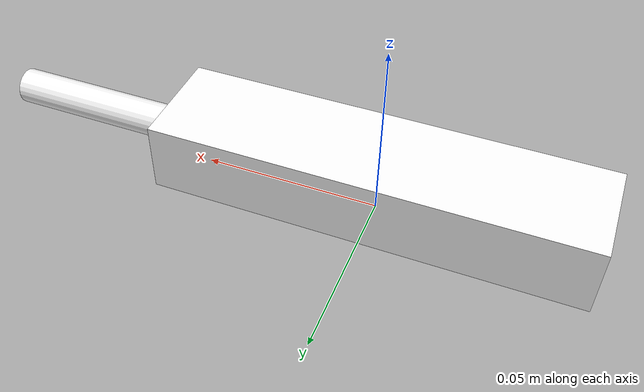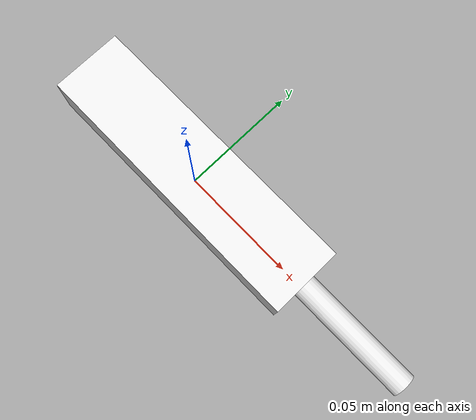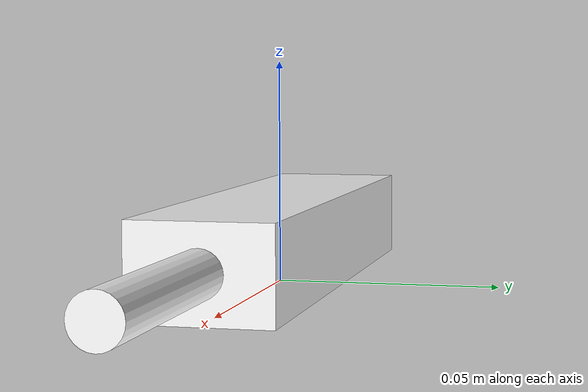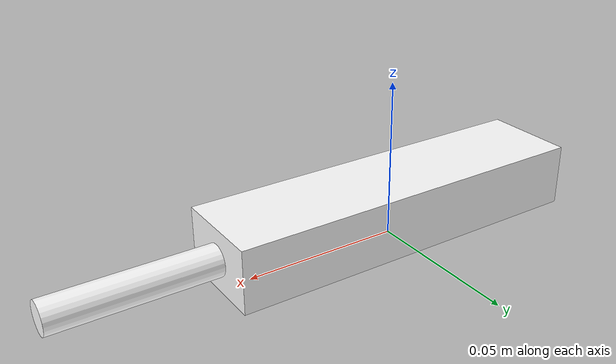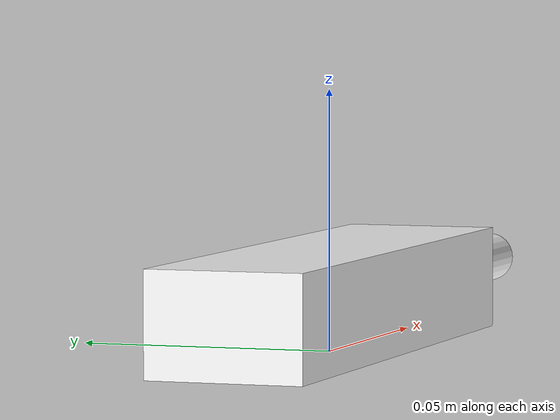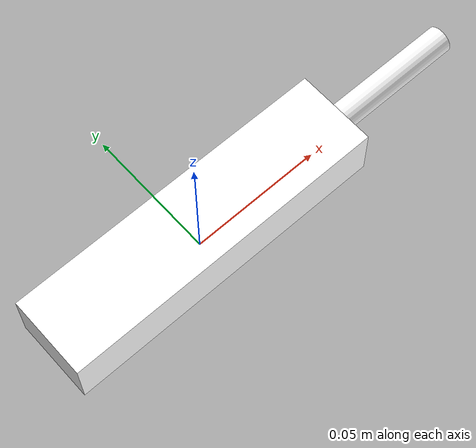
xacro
<?xml version="1.0"?>
<robot name="charger_model"
	xmlns:xacro="http://ros.org/wiki/xacro">

	<xacro:property name="M_PI" value="3.1415926" />
	<xacro:property name="H_PI" value="1.5707963" />

    <link name="base_link">
        <visual>
                <geometry>
                    <box size="1e-6 1e-6 1e-6"/>
                </geometry>
            <origin xyz="0 0 0" rpy="0 0 0"/>
            <material name="white">
                <color rgba="1 1 1 1"/>
            </material>
        </visual>
        <collision>
            <geometry>
                    <box size="1e-6 1e-6 1e-6"/>
            </geometry>
        </collision>
        <inertial>
            <mass value="0.01"/>
            <inertia ixx="1.0" ixy="0.0" ixz="0.0" iyy="1.0" iyz="0.0" izz="1.0"/>
        </inertial>
    </link>

    <link name="charger_A_link">
        <visual>
                <geometry>
                    <box size="0.12 0.03 0.02"/>
                </geometry>
            <origin xyz="0 0 0" rpy="0 0 0"/>
            <material name="white">
                <color rgba="1 1 1 1"/>
            </material>
        </visual>
        <collision>
            <geometry>
                    <box size="0.12 0.03 0.02"/>
            </geometry>
        </collision>
        <inertial>
            <mass value="1"/>
            <inertia ixx="1.0" ixy="0.0" ixz="0.0" iyy="1.0" iyz="0.0" izz="1.0"/>
        </inertial>
    </link>

    <joint name="charger_A_link_to_base_link_joint" type="fixed">
        <parent link="base_link"/>
        <child link="charger_A_link"/>
        <origin xyz="0 0 0.01" rpy="0 0 0"/>
    </joint>

    <link name="charger_B_link">
        <visual>
                <geometry>
                    <cylinder length="0.05" radius="0.005"/>
                </geometry>
            <origin xyz="0 0 0" rpy="0 0 0"/>
            <material name="white">
                <color rgba="1 1 1 1"/>
            </material>
        </visual>
        <collision>
            <geometry>
                    <cylinder length="0.05" radius="0.005"/>
            </geometry>
        </collision>
        <inertial>
            <mass value="1"/>
            <inertia ixx="1.0" ixy="0.0" ixz="0.0" iyy="1.0" iyz="0.0" izz="1.0"/>
        </inertial>
    </link>

    <joint name="charger_A_link_to_charger_B_link_joint" type="fixed">
        <parent link="charger_A_link"/>
        <child link="charger_B_link"/>
        <origin xyz="0.085 0 0" rpy="0 1.57 0"/>
    </joint>

</robot>
